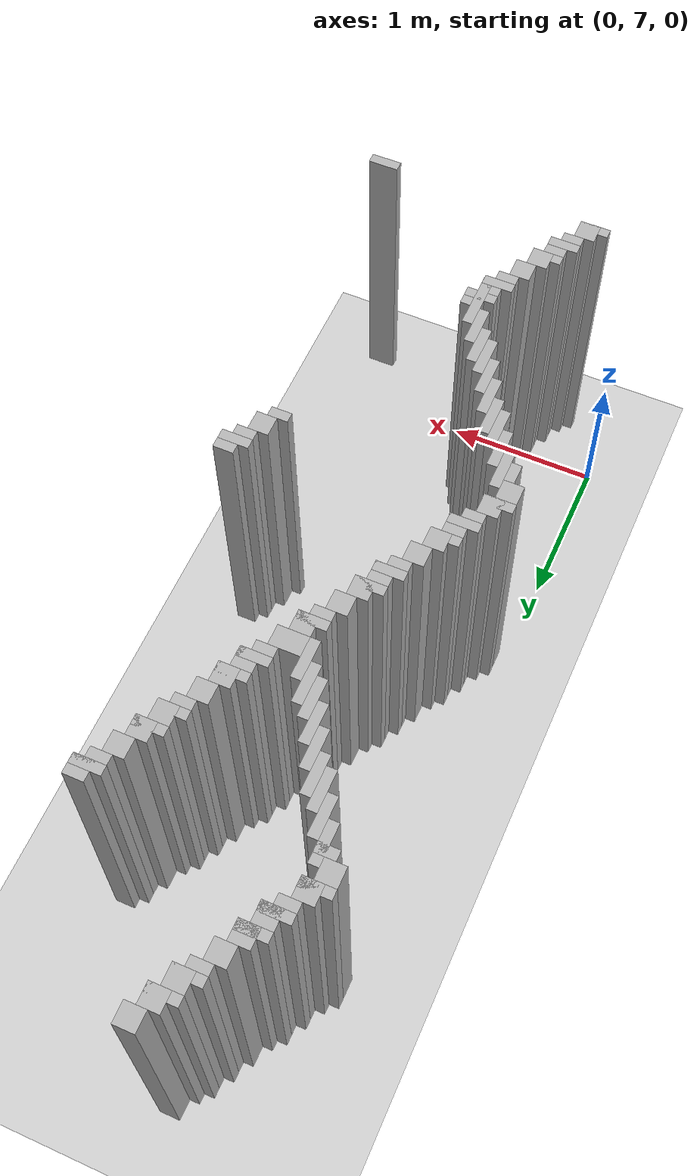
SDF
<sdf version="1.6">
 <world name="slam_world">
  <model name="ground_plane">
   <static>true</static>
   <link name="link">
    <collision name="collision">
     <geometry><plane><normal>0 0 1</normal><size>100 100</size></plane></geometry>
    </collision>
    <visual name="visual">
     <geometry><plane><normal>0 0 1</normal><size>100 100</size></plane></geometry>
     <material>
      <ambient>0.8 0.8 0.8 1</ambient>
      <diffuse>0.8 0.8 0.8 1</diffuse>
      <specular>0.8 0.8 0.8 1</specular>
     </material>
    </visual>
   </link>
  </model>
  <model name="wall_1159">
   <static>true</static>
   <pose>0.702127659574468 12.063829787234042 1.0 0 0 0</pose>
   <link name="link">
    <collision name="collision">
     <geometry><box><size>0.1276595744680851 0.1276595744680851 2.0</size></box></geometry>
    </collision>
    <visual name="visual">
     <geometry><box><size>0.1276595744680851 0.1276595744680851 2.0</size></box></geometry>
     <material><ambient>0.5 0.5 0.5 1</ambient><diffuse>0.7 0.7 0.7 1</diffuse></material>
    </visual>
   </link>
  </model>
  <model name="wall_1169">
   <static>true</static>
   <pose>0.6382978723404255 11.936170212765957 1.0 0 0 0</pose>
   <link name="link">
    <collision name="collision">
     <geometry><box><size>0.1276595744680851 0.1276595744680851 2.0</size></box></geometry>
    </collision>
    <visual name="visual">
     <geometry><box><size>0.1276595744680851 0.1276595744680851 2.0</size></box></geometry>
     <material><ambient>0.5 0.5 0.5 1</ambient><diffuse>0.7 0.7 0.7 1</diffuse></material>
    </visual>
   </link>
  </model>
  <model name="wall_1179">
   <static>true</static>
   <pose>0.6063829787234042 11.904255319148936 1.0 0 0 0</pose>
   <link name="link">
    <collision name="collision">
     <geometry><box><size>0.19148936170212766 0.06382978723404255 2.0</size></box></geometry>
    </collision>
    <visual name="visual">
     <geometry><box><size>0.19148936170212766 0.06382978723404255 2.0</size></box></geometry>
     <material><ambient>0.5 0.5 0.5 1</ambient><diffuse>0.7 0.7 0.7 1</diffuse></material>
    </visual>
   </link>
  </model>
  <model name="wall_1189">
   <static>true</static>
   <pose>0.5744680851063829 11.808510638297872 1.0 0 0 0</pose>
   <link name="link">
    <collision name="collision">
     <geometry><box><size>0.1276595744680851 0.1276595744680851 2.0</size></box></geometry>
    </collision>
    <visual name="visual">
     <geometry><box><size>0.1276595744680851 0.1276595744680851 2.0</size></box></geometry>
     <material><ambient>0.5 0.5 0.5 1</ambient><diffuse>0.7 0.7 0.7 1</diffuse></material>
    </visual>
   </link>
  </model>
  <model name="wall_1196">
   <static>true</static>
   <pose>0.5425531914893617 11.77659574468085 1.0 0 0 0</pose>
   <link name="link">
    <collision name="collision">
     <geometry><box><size>0.19148936170212766 0.06382978723404255 2.0</size></box></geometry>
    </collision>
    <visual name="visual">
     <geometry><box><size>0.19148936170212766 0.06382978723404255 2.0</size></box></geometry>
     <material><ambient>0.5 0.5 0.5 1</ambient><diffuse>0.7 0.7 0.7 1</diffuse></material>
    </visual>
   </link>
  </model>
  <model name="wall_1206">
   <static>true</static>
   <pose>0.5106382978723404 11.712765957446807 1.0 0 0 0</pose>
   <link name="link">
    <collision name="collision">
     <geometry><box><size>0.1276595744680851 0.06382978723404255 2.0</size></box></geometry>
    </collision>
    <visual name="visual">
     <geometry><box><size>0.1276595744680851 0.06382978723404255 2.0</size></box></geometry>
     <material><ambient>0.5 0.5 0.5 1</ambient><diffuse>0.7 0.7 0.7 1</diffuse></material>
    </visual>
   </link>
  </model>
  <model name="wall_1212">
   <static>true</static>
   <pose>0.44680851063829785 11.617021276595743 1.0 0 0 0</pose>
   <link name="link">
    <collision name="collision">
     <geometry><box><size>0.1276595744680851 0.1276595744680851 2.0</size></box></geometry>
    </collision>
    <visual name="visual">
     <geometry><box><size>0.1276595744680851 0.1276595744680851 2.0</size></box></geometry>
     <material><ambient>0.5 0.5 0.5 1</ambient><diffuse>0.7 0.7 0.7 1</diffuse></material>
    </visual>
   </link>
  </model>
  <model name="wall_1222">
   <static>true</static>
   <pose>0.3829787234042553 11.489361702127658 1.0 0 0 0</pose>
   <link name="link">
    <collision name="collision">
     <geometry><box><size>0.1276595744680851 0.1276595744680851 2.0</size></box></geometry>
    </collision>
    <visual name="visual">
     <geometry><box><size>0.1276595744680851 0.1276595744680851 2.0</size></box></geometry>
     <material><ambient>0.5 0.5 0.5 1</ambient><diffuse>0.7 0.7 0.7 1</diffuse></material>
    </visual>
   </link>
  </model>
  <model name="wall_1232">
   <static>true</static>
   <pose>0.351063829787234 11.457446808510637 1.0 0 0 0</pose>
   <link name="link">
    <collision name="collision">
     <geometry><box><size>0.19148936170212766 0.06382978723404255 2.0</size></box></geometry>
    </collision>
    <visual name="visual">
     <geometry><box><size>0.19148936170212766 0.06382978723404255 2.0</size></box></geometry>
     <material><ambient>0.5 0.5 0.5 1</ambient><diffuse>0.7 0.7 0.7 1</diffuse></material>
    </visual>
   </link>
  </model>
  <model name="wall_1242">
   <static>true</static>
   <pose>0.3191489361702127 11.361702127659573 1.0 0 0 0</pose>
   <link name="link">
    <collision name="collision">
     <geometry><box><size>0.1276595744680851 0.1276595744680851 2.0</size></box></geometry>
    </collision>
    <visual name="visual">
     <geometry><box><size>0.1276595744680851 0.1276595744680851 2.0</size></box></geometry>
     <material><ambient>0.5 0.5 0.5 1</ambient><diffuse>0.7 0.7 0.7 1</diffuse></material>
    </visual>
   </link>
  </model>
  <model name="wall_1248">
   <static>true</static>
   <pose>0.28723404255319146 11.329787234042552 1.0 0 0 0</pose>
   <link name="link">
    <collision name="collision">
     <geometry><box><size>0.19148936170212766 0.06382978723404255 2.0</size></box></geometry>
    </collision>
    <visual name="visual">
     <geometry><box><size>0.19148936170212766 0.06382978723404255 2.0</size></box></geometry>
     <material><ambient>0.5 0.5 0.5 1</ambient><diffuse>0.7 0.7 0.7 1</diffuse></material>
    </visual>
   </link>
  </model>
  <model name="wall_1258">
   <static>true</static>
   <pose>0.2553191489361702 11.26595744680851 1.0 0 0 0</pose>
   <link name="link">
    <collision name="collision">
     <geometry><box><size>0.1276595744680851 0.06382978723404255 2.0</size></box></geometry>
    </collision>
    <visual name="visual">
     <geometry><box><size>0.1276595744680851 0.06382978723404255 2.0</size></box></geometry>
     <material><ambient>0.5 0.5 0.5 1</ambient><diffuse>0.7 0.7 0.7 1</diffuse></material>
    </visual>
   </link>
  </model>
  <model name="wall_1264">
   <static>true</static>
   <pose>0.19148936170212766 11.170212765957446 1.0 0 0 0</pose>
   <link name="link">
    <collision name="collision">
     <geometry><box><size>0.1276595744680851 0.1276595744680851 2.0</size></box></geometry>
    </collision>
    <visual name="visual">
     <geometry><box><size>0.1276595744680851 0.1276595744680851 2.0</size></box></geometry>
     <material><ambient>0.5 0.5 0.5 1</ambient><diffuse>0.7 0.7 0.7 1</diffuse></material>
    </visual>
   </link>
  </model>
  <model name="wall_1271">
   <static>true</static>
   <pose>0.15957446808510636 11.138297872340425 1.0 0 0 0</pose>
   <link name="link">
    <collision name="collision">
     <geometry><box><size>0.19148936170212766 0.06382978723404255 2.0</size></box></geometry>
    </collision>
    <visual name="visual">
     <geometry><box><size>0.19148936170212766 0.06382978723404255 2.0</size></box></geometry>
     <material><ambient>0.5 0.5 0.5 1</ambient><diffuse>0.7 0.7 0.7 1</diffuse></material>
    </visual>
   </link>
  </model>
  <model name="wall_1277">
   <static>true</static>
   <pose>0.1276595744680851 11.042553191489361 1.0 0 0 0</pose>
   <link name="link">
    <collision name="collision">
     <geometry><box><size>0.1276595744680851 0.1276595744680851 2.0</size></box></geometry>
    </collision>
    <visual name="visual">
     <geometry><box><size>0.1276595744680851 0.1276595744680851 2.0</size></box></geometry>
     <material><ambient>0.5 0.5 0.5 1</ambient><diffuse>0.7 0.7 0.7 1</diffuse></material>
    </visual>
   </link>
  </model>
  <model name="wall_1278">
   <static>true</static>
   <pose>1.5319148936170213 11.042553191489361 1.0 0 0 0</pose>
   <link name="link">
    <collision name="collision">
     <geometry><box><size>0.1276595744680851 0.1276595744680851 2.0</size></box></geometry>
    </collision>
    <visual name="visual">
     <geometry><box><size>0.1276595744680851 0.1276595744680851 2.0</size></box></geometry>
     <material><ambient>0.5 0.5 0.5 1</ambient><diffuse>0.7 0.7 0.7 1</diffuse></material>
    </visual>
   </link>
  </model>
  <model name="wall_1283">
   <static>true</static>
   <pose>0.22340425531914893 10.914893617021276 1.0 0 0 0</pose>
   <link name="link">
    <collision name="collision">
     <geometry><box><size>0.06382978723404255 0.2553191489361702 2.0</size></box></geometry>
    </collision>
    <visual name="visual">
     <geometry><box><size>0.06382978723404255 0.2553191489361702 2.0</size></box></geometry>
     <material><ambient>0.5 0.5 0.5 1</ambient><diffuse>0.7 0.7 0.7 1</diffuse></material>
    </visual>
   </link>
  </model>
  <model name="wall_1284">
   <static>true</static>
   <pose>1.4999999999999998 11.01063829787234 1.0 0 0 0</pose>
   <link name="link">
    <collision name="collision">
     <geometry><box><size>0.19148936170212766 0.06382978723404255 2.0</size></box></geometry>
    </collision>
    <visual name="visual">
     <geometry><box><size>0.19148936170212766 0.06382978723404255 2.0</size></box></geometry>
     <material><ambient>0.5 0.5 0.5 1</ambient><diffuse>0.7 0.7 0.7 1</diffuse></material>
    </visual>
   </link>
  </model>
  <model name="wall_1289">
   <static>true</static>
   <pose>0.19148936170212766 10.946808510638297 1.0 0 0 0</pose>
   <link name="link">
    <collision name="collision">
     <geometry><box><size>0.1276595744680851 0.06382978723404255 2.0</size></box></geometry>
    </collision>
    <visual name="visual">
     <geometry><box><size>0.1276595744680851 0.06382978723404255 2.0</size></box></geometry>
     <material><ambient>0.5 0.5 0.5 1</ambient><diffuse>0.7 0.7 0.7 1</diffuse></material>
    </visual>
   </link>
  </model>
  <model name="wall_1290">
   <static>true</static>
   <pose>1.4680851063829785 10.946808510638297 1.0 0 0 0</pose>
   <link name="link">
    <collision name="collision">
     <geometry><box><size>0.1276595744680851 0.06382978723404255 2.0</size></box></geometry>
    </collision>
    <visual name="visual">
     <geometry><box><size>0.1276595744680851 0.06382978723404255 2.0</size></box></geometry>
     <material><ambient>0.5 0.5 0.5 1</ambient><diffuse>0.7 0.7 0.7 1</diffuse></material>
    </visual>
   </link>
  </model>
  <model name="wall_1296">
   <static>true</static>
   <pose>0.28723404255319146 10.787234042553191 1.0 0 0 0</pose>
   <link name="link">
    <collision name="collision">
     <geometry><box><size>0.06382978723404255 0.2553191489361702 2.0</size></box></geometry>
    </collision>
    <visual name="visual">
     <geometry><box><size>0.06382978723404255 0.2553191489361702 2.0</size></box></geometry>
     <material><ambient>0.5 0.5 0.5 1</ambient><diffuse>0.7 0.7 0.7 1</diffuse></material>
    </visual>
   </link>
  </model>
  <model name="wall_1297">
   <static>true</static>
   <pose>1.404255319148936 10.851063829787233 1.0 0 0 0</pose>
   <link name="link">
    <collision name="collision">
     <geometry><box><size>0.1276595744680851 0.1276595744680851 2.0</size></box></geometry>
    </collision>
    <visual name="visual">
     <geometry><box><size>0.1276595744680851 0.1276595744680851 2.0</size></box></geometry>
     <material><ambient>0.5 0.5 0.5 1</ambient><diffuse>0.7 0.7 0.7 1</diffuse></material>
    </visual>
   </link>
  </model>
  <model name="wall_1303">
   <static>true</static>
   <pose>0.351063829787234 10.659574468085106 1.0 0 0 0</pose>
   <link name="link">
    <collision name="collision">
     <geometry><box><size>0.06382978723404255 0.2553191489361702 2.0</size></box></geometry>
    </collision>
    <visual name="visual">
     <geometry><box><size>0.06382978723404255 0.2553191489361702 2.0</size></box></geometry>
     <material><ambient>0.5 0.5 0.5 1</ambient><diffuse>0.7 0.7 0.7 1</diffuse></material>
    </visual>
   </link>
  </model>
  <model name="wall_1304">
   <static>true</static>
   <pose>1.3404255319148934 10.723404255319148 1.0 0 0 0</pose>
   <link name="link">
    <collision name="collision">
     <geometry><box><size>0.1276595744680851 0.1276595744680851 2.0</size></box></geometry>
    </collision>
    <visual name="visual">
     <geometry><box><size>0.1276595744680851 0.1276595744680851 2.0</size></box></geometry>
     <material><ambient>0.5 0.5 0.5 1</ambient><diffuse>0.7 0.7 0.7 1</diffuse></material>
    </visual>
   </link>
  </model>
  <model name="wall_1310">
   <static>true</static>
   <pose>0.4148936170212766 10.595744680851062 1.0 0 0 0</pose>
   <link name="link">
    <collision name="collision">
     <geometry><box><size>0.06382978723404255 0.2553191489361702 2.0</size></box></geometry>
    </collision>
    <visual name="visual">
     <geometry><box><size>0.06382978723404255 0.2553191489361702 2.0</size></box></geometry>
     <material><ambient>0.5 0.5 0.5 1</ambient><diffuse>0.7 0.7 0.7 1</diffuse></material>
    </visual>
   </link>
  </model>
  <model name="wall_1311">
   <static>true</static>
   <pose>1.3085106382978722 10.691489361702127 1.0 0 0 0</pose>
   <link name="link">
    <collision name="collision">
     <geometry><box><size>0.19148936170212766 0.06382978723404255 2.0</size></box></geometry>
    </collision>
    <visual name="visual">
     <geometry><box><size>0.19148936170212766 0.06382978723404255 2.0</size></box></geometry>
     <material><ambient>0.5 0.5 0.5 1</ambient><diffuse>0.7 0.7 0.7 1</diffuse></material>
    </visual>
   </link>
  </model>
  <model name="wall_1317">
   <static>true</static>
   <pose>1.276595744680851 10.595744680851062 1.0 0 0 0</pose>
   <link name="link">
    <collision name="collision">
     <geometry><box><size>0.1276595744680851 0.1276595744680851 2.0</size></box></geometry>
    </collision>
    <visual name="visual">
     <geometry><box><size>0.1276595744680851 0.1276595744680851 2.0</size></box></geometry>
     <material><ambient>0.5 0.5 0.5 1</ambient><diffuse>0.7 0.7 0.7 1</diffuse></material>
    </visual>
   </link>
  </model>
  <model name="wall_1319">
   <static>true</static>
   <pose>0.4787234042553191 10.468085106382977 1.0 0 0 0</pose>
   <link name="link">
    <collision name="collision">
     <geometry><box><size>0.06382978723404255 0.2553191489361702 2.0</size></box></geometry>
    </collision>
    <visual name="visual">
     <geometry><box><size>0.06382978723404255 0.2553191489361702 2.0</size></box></geometry>
     <material><ambient>0.5 0.5 0.5 1</ambient><diffuse>0.7 0.7 0.7 1</diffuse></material>
    </visual>
   </link>
  </model>
  <model name="wall_1320">
   <static>true</static>
   <pose>1.2446808510638296 10.563829787234042 1.0 0 0 0</pose>
   <link name="link">
    <collision name="collision">
     <geometry><box><size>0.19148936170212766 0.06382978723404255 2.0</size></box></geometry>
    </collision>
    <visual name="visual">
     <geometry><box><size>0.19148936170212766 0.06382978723404255 2.0</size></box></geometry>
     <material><ambient>0.5 0.5 0.5 1</ambient><diffuse>0.7 0.7 0.7 1</diffuse></material>
    </visual>
   </link>
  </model>
  <model name="wall_1326">
   <static>true</static>
   <pose>1.2127659574468084 10.5 1.0 0 0 0</pose>
   <link name="link">
    <collision name="collision">
     <geometry><box><size>0.1276595744680851 0.06382978723404255 2.0</size></box></geometry>
    </collision>
    <visual name="visual">
     <geometry><box><size>0.1276595744680851 0.06382978723404255 2.0</size></box></geometry>
     <material><ambient>0.5 0.5 0.5 1</ambient><diffuse>0.7 0.7 0.7 1</diffuse></material>
    </visual>
   </link>
  </model>
  <model name="wall_1328">
   <static>true</static>
   <pose>0.5425531914893617 10.340425531914892 1.0 0 0 0</pose>
   <link name="link">
    <collision name="collision">
     <geometry><box><size>0.06382978723404255 0.2553191489361702 2.0</size></box></geometry>
    </collision>
    <visual name="visual">
     <geometry><box><size>0.06382978723404255 0.2553191489361702 2.0</size></box></geometry>
     <material><ambient>0.5 0.5 0.5 1</ambient><diffuse>0.7 0.7 0.7 1</diffuse></material>
    </visual>
   </link>
  </model>
  <model name="wall_1329">
   <static>true</static>
   <pose>1.1489361702127658 10.404255319148936 1.0 0 0 0</pose>
   <link name="link">
    <collision name="collision">
     <geometry><box><size>0.1276595744680851 0.1276595744680851 2.0</size></box></geometry>
    </collision>
    <visual name="visual">
     <geometry><box><size>0.1276595744680851 0.1276595744680851 2.0</size></box></geometry>
     <material><ambient>0.5 0.5 0.5 1</ambient><diffuse>0.7 0.7 0.7 1</diffuse></material>
    </visual>
   </link>
  </model>
  <model name="wall_1335">
   <static>true</static>
   <pose>0.6063829787234042 10.212765957446807 1.0 0 0 0</pose>
   <link name="link">
    <collision name="collision">
     <geometry><box><size>0.06382978723404255 0.2553191489361702 2.0</size></box></geometry>
    </collision>
    <visual name="visual">
     <geometry><box><size>0.06382978723404255 0.2553191489361702 2.0</size></box></geometry>
     <material><ambient>0.5 0.5 0.5 1</ambient><diffuse>0.7 0.7 0.7 1</diffuse></material>
    </visual>
   </link>
  </model>
  <model name="wall_1336">
   <static>true</static>
   <pose>1.0851063829787233 10.27659574468085 1.0 0 0 0</pose>
   <link name="link">
    <collision name="collision">
     <geometry><box><size>0.1276595744680851 0.1276595744680851 2.0</size></box></geometry>
    </collision>
    <visual name="visual">
     <geometry><box><size>0.1276595744680851 0.1276595744680851 2.0</size></box></geometry>
     <material><ambient>0.5 0.5 0.5 1</ambient><diffuse>0.7 0.7 0.7 1</diffuse></material>
    </visual>
   </link>
  </model>
  <model name="wall_1342">
   <static>true</static>
   <pose>0.6702127659574467 10.148936170212766 1.0 0 0 0</pose>
   <link name="link">
    <collision name="collision">
     <geometry><box><size>0.06382978723404255 0.2553191489361702 2.0</size></box></geometry>
    </collision>
    <visual name="visual">
     <geometry><box><size>0.06382978723404255 0.2553191489361702 2.0</size></box></geometry>
     <material><ambient>0.5 0.5 0.5 1</ambient><diffuse>0.7 0.7 0.7 1</diffuse></material>
    </visual>
   </link>
  </model>
  <model name="wall_1343">
   <static>true</static>
   <pose>1.053191489361702 10.24468085106383 1.0 0 0 0</pose>
   <link name="link">
    <collision name="collision">
     <geometry><box><size>0.19148936170212766 0.06382978723404255 2.0</size></box></geometry>
    </collision>
    <visual name="visual">
     <geometry><box><size>0.19148936170212766 0.06382978723404255 2.0</size></box></geometry>
     <material><ambient>0.5 0.5 0.5 1</ambient><diffuse>0.7 0.7 0.7 1</diffuse></material>
    </visual>
   </link>
  </model>
  <model name="wall_1349">
   <static>true</static>
   <pose>1.0212765957446808 10.148936170212766 1.0 0 0 0</pose>
   <link name="link">
    <collision name="collision">
     <geometry><box><size>0.1276595744680851 0.1276595744680851 2.0</size></box></geometry>
    </collision>
    <visual name="visual">
     <geometry><box><size>0.1276595744680851 0.1276595744680851 2.0</size></box></geometry>
     <material><ambient>0.5 0.5 0.5 1</ambient><diffuse>0.7 0.7 0.7 1</diffuse></material>
    </visual>
   </link>
  </model>
  <model name="wall_1351">
   <static>true</static>
   <pose>0.7340425531914893 10.02127659574468 1.0 0 0 0</pose>
   <link name="link">
    <collision name="collision">
     <geometry><box><size>0.06382978723404255 0.2553191489361702 2.0</size></box></geometry>
    </collision>
    <visual name="visual">
     <geometry><box><size>0.06382978723404255 0.2553191489361702 2.0</size></box></geometry>
     <material><ambient>0.5 0.5 0.5 1</ambient><diffuse>0.7 0.7 0.7 1</diffuse></material>
    </visual>
   </link>
  </model>
  <model name="wall_1352">
   <static>true</static>
   <pose>0.9893617021276595 10.117021276595743 1.0 0 0 0</pose>
   <link name="link">
    <collision name="collision">
     <geometry><box><size>0.19148936170212766 0.06382978723404255 2.0</size></box></geometry>
    </collision>
    <visual name="visual">
     <geometry><box><size>0.19148936170212766 0.06382978723404255 2.0</size></box></geometry>
     <material><ambient>0.5 0.5 0.5 1</ambient><diffuse>0.7 0.7 0.7 1</diffuse></material>
    </visual>
   </link>
  </model>
  <model name="wall_1358">
   <static>true</static>
   <pose>0.9574468085106382 10.053191489361701 1.0 0 0 0</pose>
   <link name="link">
    <collision name="collision">
     <geometry><box><size>0.1276595744680851 0.06382978723404255 2.0</size></box></geometry>
    </collision>
    <visual name="visual">
     <geometry><box><size>0.1276595744680851 0.06382978723404255 2.0</size></box></geometry>
     <material><ambient>0.5 0.5 0.5 1</ambient><diffuse>0.7 0.7 0.7 1</diffuse></material>
    </visual>
   </link>
  </model>
  <model name="wall_1360">
   <static>true</static>
   <pose>0.8617021276595744 9.957446808510637 1.0 0 0 0</pose>
   <link name="link">
    <collision name="collision">
     <geometry><box><size>0.19148936170212766 0.1276595744680851 2.0</size></box></geometry>
    </collision>
    <visual name="visual">
     <geometry><box><size>0.19148936170212766 0.1276595744680851 2.0</size></box></geometry>
     <material><ambient>0.5 0.5 0.5 1</ambient><diffuse>0.7 0.7 0.7 1</diffuse></material>
    </visual>
   </link>
  </model>
  <model name="wall_1373">
   <static>true</static>
   <pose>0.8297872340425532 9.829787234042552 1.0 0 0 0</pose>
   <link name="link">
    <collision name="collision">
     <geometry><box><size>0.1276595744680851 0.1276595744680851 2.0</size></box></geometry>
    </collision>
    <visual name="visual">
     <geometry><box><size>0.1276595744680851 0.1276595744680851 2.0</size></box></geometry>
     <material><ambient>0.5 0.5 0.5 1</ambient><diffuse>0.7 0.7 0.7 1</diffuse></material>
    </visual>
   </link>
  </model>
  <model name="wall_1378">
   <static>true</static>
   <pose>0.7978723404255319 9.797872340425531 1.0 0 0 0</pose>
   <link name="link">
    <collision name="collision">
     <geometry><box><size>0.19148936170212766 0.06382978723404255 2.0</size></box></geometry>
    </collision>
    <visual name="visual">
     <geometry><box><size>0.19148936170212766 0.06382978723404255 2.0</size></box></geometry>
     <material><ambient>0.5 0.5 0.5 1</ambient><diffuse>0.7 0.7 0.7 1</diffuse></material>
    </visual>
   </link>
  </model>
  <model name="wall_1383">
   <static>true</static>
   <pose>0.7659574468085106 9.734042553191488 1.0 0 0 0</pose>
   <link name="link">
    <collision name="collision">
     <geometry><box><size>0.1276595744680851 0.06382978723404255 2.0</size></box></geometry>
    </collision>
    <visual name="visual">
     <geometry><box><size>0.1276595744680851 0.06382978723404255 2.0</size></box></geometry>
     <material><ambient>0.5 0.5 0.5 1</ambient><diffuse>0.7 0.7 0.7 1</diffuse></material>
    </visual>
   </link>
  </model>
  <model name="wall_1389">
   <static>true</static>
   <pose>0.702127659574468 9.638297872340425 1.0 0 0 0</pose>
   <link name="link">
    <collision name="collision">
     <geometry><box><size>0.1276595744680851 0.1276595744680851 2.0</size></box></geometry>
    </collision>
    <visual name="visual">
     <geometry><box><size>0.1276595744680851 0.1276595744680851 2.0</size></box></geometry>
     <material><ambient>0.5 0.5 0.5 1</ambient><diffuse>0.7 0.7 0.7 1</diffuse></material>
    </visual>
   </link>
  </model>
  <model name="wall_1397">
   <static>true</static>
   <pose>0.6382978723404255 9.51063829787234 1.0 0 0 0</pose>
   <link name="link">
    <collision name="collision">
     <geometry><box><size>0.1276595744680851 0.1276595744680851 2.0</size></box></geometry>
    </collision>
    <visual name="visual">
     <geometry><box><size>0.1276595744680851 0.1276595744680851 2.0</size></box></geometry>
     <material><ambient>0.5 0.5 0.5 1</ambient><diffuse>0.7 0.7 0.7 1</diffuse></material>
    </visual>
   </link>
  </model>
  <model name="wall_1405">
   <static>true</static>
   <pose>0.6063829787234042 9.478723404255318 1.0 0 0 0</pose>
   <link name="link">
    <collision name="collision">
     <geometry><box><size>0.19148936170212766 0.06382978723404255 2.0</size></box></geometry>
    </collision>
    <visual name="visual">
     <geometry><box><size>0.19148936170212766 0.06382978723404255 2.0</size></box></geometry>
     <material><ambient>0.5 0.5 0.5 1</ambient><diffuse>0.7 0.7 0.7 1</diffuse></material>
    </visual>
   </link>
  </model>
  <model name="wall_1413">
   <static>true</static>
   <pose>0.5744680851063829 9.382978723404255 1.0 0 0 0</pose>
   <link name="link">
    <collision name="collision">
     <geometry><box><size>0.1276595744680851 0.1276595744680851 2.0</size></box></geometry>
    </collision>
    <visual name="visual">
     <geometry><box><size>0.1276595744680851 0.1276595744680851 2.0</size></box></geometry>
     <material><ambient>0.5 0.5 0.5 1</ambient><diffuse>0.7 0.7 0.7 1</diffuse></material>
    </visual>
   </link>
  </model>
  <model name="wall_1419">
   <static>true</static>
   <pose>0.5425531914893617 9.351063829787233 1.0 0 0 0</pose>
   <link name="link">
    <collision name="collision">
     <geometry><box><size>0.19148936170212766 0.06382978723404255 2.0</size></box></geometry>
    </collision>
    <visual name="visual">
     <geometry><box><size>0.19148936170212766 0.06382978723404255 2.0</size></box></geometry>
     <material><ambient>0.5 0.5 0.5 1</ambient><diffuse>0.7 0.7 0.7 1</diffuse></material>
    </visual>
   </link>
  </model>
  <model name="wall_1427">
   <static>true</static>
   <pose>0.5106382978723404 9.287234042553191 1.0 0 0 0</pose>
   <link name="link">
    <collision name="collision">
     <geometry><box><size>0.1276595744680851 0.06382978723404255 2.0</size></box></geometry>
    </collision>
    <visual name="visual">
     <geometry><box><size>0.1276595744680851 0.06382978723404255 2.0</size></box></geometry>
     <material><ambient>0.5 0.5 0.5 1</ambient><diffuse>0.7 0.7 0.7 1</diffuse></material>
    </visual>
   </link>
  </model>
  <model name="wall_1432">
   <static>true</static>
   <pose>0.44680851063829785 9.191489361702127 1.0 0 0 0</pose>
   <link name="link">
    <collision name="collision">
     <geometry><box><size>0.1276595744680851 0.1276595744680851 2.0</size></box></geometry>
    </collision>
    <visual name="visual">
     <geometry><box><size>0.1276595744680851 0.1276595744680851 2.0</size></box></geometry>
     <material><ambient>0.5 0.5 0.5 1</ambient><diffuse>0.7 0.7 0.7 1</diffuse></material>
    </visual>
   </link>
  </model>
  <model name="wall_1440">
   <static>true</static>
   <pose>0.3829787234042553 9.063829787234042 1.0 0 0 0</pose>
   <link name="link">
    <collision name="collision">
     <geometry><box><size>0.1276595744680851 0.1276595744680851 2.0</size></box></geometry>
    </collision>
    <visual name="visual">
     <geometry><box><size>0.1276595744680851 0.1276595744680851 2.0</size></box></geometry>
     <material><ambient>0.5 0.5 0.5 1</ambient><diffuse>0.7 0.7 0.7 1</diffuse></material>
    </visual>
   </link>
  </model>
  <model name="wall_1448">
   <static>true</static>
   <pose>0.351063829787234 9.03191489361702 1.0 0 0 0</pose>
   <link name="link">
    <collision name="collision">
     <geometry><box><size>0.19148936170212766 0.06382978723404255 2.0</size></box></geometry>
    </collision>
    <visual name="visual">
     <geometry><box><size>0.19148936170212766 0.06382978723404255 2.0</size></box></geometry>
     <material><ambient>0.5 0.5 0.5 1</ambient><diffuse>0.7 0.7 0.7 1</diffuse></material>
    </visual>
   </link>
  </model>
  <model name="wall_1456">
   <static>true</static>
   <pose>0.3191489361702127 8.936170212765957 1.0 0 0 0</pose>
   <link name="link">
    <collision name="collision">
     <geometry><box><size>0.1276595744680851 0.1276595744680851 2.0</size></box></geometry>
    </collision>
    <visual name="visual">
     <geometry><box><size>0.1276595744680851 0.1276595744680851 2.0</size></box></geometry>
     <material><ambient>0.5 0.5 0.5 1</ambient><diffuse>0.7 0.7 0.7 1</diffuse></material>
    </visual>
   </link>
  </model>
  <model name="wall_1457">
   <static>true</static>
   <pose>1.7234042553191489 8.936170212765957 1.0 0 0 0</pose>
   <link name="link">
    <collision name="collision">
     <geometry><box><size>0.1276595744680851 0.1276595744680851 2.0</size></box></geometry>
    </collision>
    <visual name="visual">
     <geometry><box><size>0.1276595744680851 0.1276595744680851 2.0</size></box></geometry>
     <material><ambient>0.5 0.5 0.5 1</ambient><diffuse>0.7 0.7 0.7 1</diffuse></material>
    </visual>
   </link>
  </model>
  <model name="wall_1461">
   <static>true</static>
   <pose>0.28723404255319146 8.904255319148936 1.0 0 0 0</pose>
   <link name="link">
    <collision name="collision">
     <geometry><box><size>0.19148936170212766 0.06382978723404255 2.0</size></box></geometry>
    </collision>
    <visual name="visual">
     <geometry><box><size>0.19148936170212766 0.06382978723404255 2.0</size></box></geometry>
     <material><ambient>0.5 0.5 0.5 1</ambient><diffuse>0.7 0.7 0.7 1</diffuse></material>
    </visual>
   </link>
  </model>
  <model name="wall_1462">
   <static>true</static>
   <pose>1.6914893617021276 8.904255319148936 1.0 0 0 0</pose>
   <link name="link">
    <collision name="collision">
     <geometry><box><size>0.19148936170212766 0.06382978723404255 2.0</size></box></geometry>
    </collision>
    <visual name="visual">
     <geometry><box><size>0.19148936170212766 0.06382978723404255 2.0</size></box></geometry>
     <material><ambient>0.5 0.5 0.5 1</ambient><diffuse>0.7 0.7 0.7 1</diffuse></material>
    </visual>
   </link>
  </model>
  <model name="wall_1469">
   <static>true</static>
   <pose>0.2553191489361702 8.840425531914892 1.0 0 0 0</pose>
   <link name="link">
    <collision name="collision">
     <geometry><box><size>0.1276595744680851 0.06382978723404255 2.0</size></box></geometry>
    </collision>
    <visual name="visual">
     <geometry><box><size>0.1276595744680851 0.06382978723404255 2.0</size></box></geometry>
     <material><ambient>0.5 0.5 0.5 1</ambient><diffuse>0.7 0.7 0.7 1</diffuse></material>
    </visual>
   </link>
  </model>
  <model name="wall_1470">
   <static>true</static>
   <pose>1.6595744680851063 8.840425531914892 1.0 0 0 0</pose>
   <link name="link">
    <collision name="collision">
     <geometry><box><size>0.1276595744680851 0.06382978723404255 2.0</size></box></geometry>
    </collision>
    <visual name="visual">
     <geometry><box><size>0.1276595744680851 0.06382978723404255 2.0</size></box></geometry>
     <material><ambient>0.5 0.5 0.5 1</ambient><diffuse>0.7 0.7 0.7 1</diffuse></material>
    </visual>
   </link>
  </model>
  <model name="wall_1474">
   <static>true</static>
   <pose>0.19148936170212766 8.74468085106383 1.0 0 0 0</pose>
   <link name="link">
    <collision name="collision">
     <geometry><box><size>0.1276595744680851 0.1276595744680851 2.0</size></box></geometry>
    </collision>
    <visual name="visual">
     <geometry><box><size>0.1276595744680851 0.1276595744680851 2.0</size></box></geometry>
     <material><ambient>0.5 0.5 0.5 1</ambient><diffuse>0.7 0.7 0.7 1</diffuse></material>
    </visual>
   </link>
  </model>
  <model name="wall_1475">
   <static>true</static>
   <pose>1.5957446808510638 8.74468085106383 1.0 0 0 0</pose>
   <link name="link">
    <collision name="collision">
     <geometry><box><size>0.1276595744680851 0.1276595744680851 2.0</size></box></geometry>
    </collision>
    <visual name="visual">
     <geometry><box><size>0.1276595744680851 0.1276595744680851 2.0</size></box></geometry>
     <material><ambient>0.5 0.5 0.5 1</ambient><diffuse>0.7 0.7 0.7 1</diffuse></material>
    </visual>
   </link>
  </model>
  <model name="wall_1482">
   <static>true</static>
   <pose>0.15957446808510636 8.712765957446807 1.0 0 0 0</pose>
   <link name="link">
    <collision name="collision">
     <geometry><box><size>0.19148936170212766 0.06382978723404255 2.0</size></box></geometry>
    </collision>
    <visual name="visual">
     <geometry><box><size>0.19148936170212766 0.06382978723404255 2.0</size></box></geometry>
     <material><ambient>0.5 0.5 0.5 1</ambient><diffuse>0.7 0.7 0.7 1</diffuse></material>
    </visual>
   </link>
  </model>
  <model name="wall_1487">
   <static>true</static>
   <pose>0.1276595744680851 8.617021276595745 1.0 0 0 0</pose>
   <link name="link">
    <collision name="collision">
     <geometry><box><size>0.1276595744680851 0.1276595744680851 2.0</size></box></geometry>
    </collision>
    <visual name="visual">
     <geometry><box><size>0.1276595744680851 0.1276595744680851 2.0</size></box></geometry>
     <material><ambient>0.5 0.5 0.5 1</ambient><diffuse>0.7 0.7 0.7 1</diffuse></material>
    </visual>
   </link>
  </model>
  <model name="wall_1488">
   <static>true</static>
   <pose>1.5319148936170213 8.648936170212766 1.0 0 0 0</pose>
   <link name="link">
    <collision name="collision">
     <geometry><box><size>0.1276595744680851 0.06382978723404255 2.0</size></box></geometry>
    </collision>
    <visual name="visual">
     <geometry><box><size>0.1276595744680851 0.06382978723404255 2.0</size></box></geometry>
     <material><ambient>0.5 0.5 0.5 1</ambient><diffuse>0.7 0.7 0.7 1</diffuse></material>
    </visual>
   </link>
  </model>
  <model name="wall_1494">
   <static>true</static>
   <pose>0.22340425531914893 8.48936170212766 1.0 0 0 0</pose>
   <link name="link">
    <collision name="collision">
     <geometry><box><size>0.06382978723404255 0.2553191489361702 2.0</size></box></geometry>
    </collision>
    <visual name="visual">
     <geometry><box><size>0.06382978723404255 0.2553191489361702 2.0</size></box></geometry>
     <material><ambient>0.5 0.5 0.5 1</ambient><diffuse>0.7 0.7 0.7 1</diffuse></material>
    </visual>
   </link>
  </model>
  <model name="wall_1498">
   <static>true</static>
   <pose>0.19148936170212766 8.48936170212766 1.0 0 0 0</pose>
   <link name="link">
    <collision name="collision">
     <geometry><box><size>0.1276595744680851 0.1276595744680851 2.0</size></box></geometry>
    </collision>
    <visual name="visual">
     <geometry><box><size>0.1276595744680851 0.1276595744680851 2.0</size></box></geometry>
     <material><ambient>0.5 0.5 0.5 1</ambient><diffuse>0.7 0.7 0.7 1</diffuse></material>
    </visual>
   </link>
  </model>
  <model name="wall_1502">
   <static>true</static>
   <pose>0.28723404255319146 8.361702127659575 1.0 0 0 0</pose>
   <link name="link">
    <collision name="collision">
     <geometry><box><size>0.06382978723404255 0.2553191489361702 2.0</size></box></geometry>
    </collision>
    <visual name="visual">
     <geometry><box><size>0.06382978723404255 0.2553191489361702 2.0</size></box></geometry>
     <material><ambient>0.5 0.5 0.5 1</ambient><diffuse>0.7 0.7 0.7 1</diffuse></material>
    </visual>
   </link>
  </model>
  <model name="wall_1509">
   <static>true</static>
   <pose>0.351063829787234 8.23404255319149 1.0 0 0 0</pose>
   <link name="link">
    <collision name="collision">
     <geometry><box><size>0.06382978723404255 0.2553191489361702 2.0</size></box></geometry>
    </collision>
    <visual name="visual">
     <geometry><box><size>0.06382978723404255 0.2553191489361702 2.0</size></box></geometry>
     <material><ambient>0.5 0.5 0.5 1</ambient><diffuse>0.7 0.7 0.7 1</diffuse></material>
    </visual>
   </link>
  </model>
  <model name="wall_1514">
   <static>true</static>
   <pose>0.4148936170212766 8.170212765957446 1.0 0 0 0</pose>
   <link name="link">
    <collision name="collision">
     <geometry><box><size>0.06382978723404255 0.2553191489361702 2.0</size></box></geometry>
    </collision>
    <visual name="visual">
     <geometry><box><size>0.06382978723404255 0.2553191489361702 2.0</size></box></geometry>
     <material><ambient>0.5 0.5 0.5 1</ambient><diffuse>0.7 0.7 0.7 1</diffuse></material>
    </visual>
   </link>
  </model>
  <model name="wall_1521">
   <static>true</static>
   <pose>0.4787234042553191 8.042553191489361 1.0 0 0 0</pose>
   <link name="link">
    <collision name="collision">
     <geometry><box><size>0.06382978723404255 0.2553191489361702 2.0</size></box></geometry>
    </collision>
    <visual name="visual">
     <geometry><box><size>0.06382978723404255 0.2553191489361702 2.0</size></box></geometry>
     <material><ambient>0.5 0.5 0.5 1</ambient><diffuse>0.7 0.7 0.7 1</diffuse></material>
    </visual>
   </link>
  </model>
  <model name="wall_1527">
   <static>true</static>
   <pose>0.5425531914893617 7.914893617021276 1.0 0 0 0</pose>
   <link name="link">
    <collision name="collision">
     <geometry><box><size>0.06382978723404255 0.2553191489361702 2.0</size></box></geometry>
    </collision>
    <visual name="visual">
     <geometry><box><size>0.06382978723404255 0.2553191489361702 2.0</size></box></geometry>
     <material><ambient>0.5 0.5 0.5 1</ambient><diffuse>0.7 0.7 0.7 1</diffuse></material>
    </visual>
   </link>
  </model>
  <model name="wall_1532">
   <static>true</static>
   <pose>0.6063829787234042 7.787234042553191 1.0 0 0 0</pose>
   <link name="link">
    <collision name="collision">
     <geometry><box><size>0.06382978723404255 0.2553191489361702 2.0</size></box></geometry>
    </collision>
    <visual name="visual">
     <geometry><box><size>0.06382978723404255 0.2553191489361702 2.0</size></box></geometry>
     <material><ambient>0.5 0.5 0.5 1</ambient><diffuse>0.7 0.7 0.7 1</diffuse></material>
    </visual>
   </link>
  </model>
  <model name="wall_1537">
   <static>true</static>
   <pose>0.6702127659574467 7.723404255319148 1.0 0 0 0</pose>
   <link name="link">
    <collision name="collision">
     <geometry><box><size>0.06382978723404255 0.2553191489361702 2.0</size></box></geometry>
    </collision>
    <visual name="visual">
     <geometry><box><size>0.06382978723404255 0.2553191489361702 2.0</size></box></geometry>
     <material><ambient>0.5 0.5 0.5 1</ambient><diffuse>0.7 0.7 0.7 1</diffuse></material>
    </visual>
   </link>
  </model>
  <model name="wall_1543">
   <static>true</static>
   <pose>0.7340425531914893 7.595744680851063 1.0 0 0 0</pose>
   <link name="link">
    <collision name="collision">
     <geometry><box><size>0.06382978723404255 0.2553191489361702 2.0</size></box></geometry>
    </collision>
    <visual name="visual">
     <geometry><box><size>0.06382978723404255 0.2553191489361702 2.0</size></box></geometry>
     <material><ambient>0.5 0.5 0.5 1</ambient><diffuse>0.7 0.7 0.7 1</diffuse></material>
    </visual>
   </link>
  </model>
  <model name="wall_1549">
   <static>true</static>
   <pose>0.7978723404255319 7.404255319148936 1.0 0 0 0</pose>
   <link name="link">
    <collision name="collision">
     <geometry><box><size>0.06382978723404255 0.3829787234042553 2.0</size></box></geometry>
    </collision>
    <visual name="visual">
     <geometry><box><size>0.06382978723404255 0.3829787234042553 2.0</size></box></geometry>
     <material><ambient>0.5 0.5 0.5 1</ambient><diffuse>0.7 0.7 0.7 1</diffuse></material>
    </visual>
   </link>
  </model>
  <model name="wall_1556">
   <static>true</static>
   <pose>0.8617021276595744 7.404255319148936 1.0 0 0 0</pose>
   <link name="link">
    <collision name="collision">
     <geometry><box><size>0.06382978723404255 0.1276595744680851 2.0</size></box></geometry>
    </collision>
    <visual name="visual">
     <geometry><box><size>0.06382978723404255 0.1276595744680851 2.0</size></box></geometry>
     <material><ambient>0.5 0.5 0.5 1</ambient><diffuse>0.7 0.7 0.7 1</diffuse></material>
    </visual>
   </link>
  </model>
  <model name="wall_1564">
   <static>true</static>
   <pose>0.7978723404255319 7.372340425531914 1.0 0 0 0</pose>
   <link name="link">
    <collision name="collision">
     <geometry><box><size>0.19148936170212766 0.06382978723404255 2.0</size></box></geometry>
    </collision>
    <visual name="visual">
     <geometry><box><size>0.19148936170212766 0.06382978723404255 2.0</size></box></geometry>
     <material><ambient>0.5 0.5 0.5 1</ambient><diffuse>0.7 0.7 0.7 1</diffuse></material>
    </visual>
   </link>
  </model>
  <model name="wall_1571">
   <static>true</static>
   <pose>0.7659574468085106 7.276595744680851 1.0 0 0 0</pose>
   <link name="link">
    <collision name="collision">
     <geometry><box><size>0.1276595744680851 0.1276595744680851 2.0</size></box></geometry>
    </collision>
    <visual name="visual">
     <geometry><box><size>0.1276595744680851 0.1276595744680851 2.0</size></box></geometry>
     <material><ambient>0.5 0.5 0.5 1</ambient><diffuse>0.7 0.7 0.7 1</diffuse></material>
    </visual>
   </link>
  </model>
  <model name="wall_1580">
   <static>true</static>
   <pose>0.7340425531914893 7.244680851063829 1.0 0 0 0</pose>
   <link name="link">
    <collision name="collision">
     <geometry><box><size>0.19148936170212766 0.06382978723404255 2.0</size></box></geometry>
    </collision>
    <visual name="visual">
     <geometry><box><size>0.19148936170212766 0.06382978723404255 2.0</size></box></geometry>
     <material><ambient>0.5 0.5 0.5 1</ambient><diffuse>0.7 0.7 0.7 1</diffuse></material>
    </visual>
   </link>
  </model>
  <model name="wall_1589">
   <static>true</static>
   <pose>0.702127659574468 7.180851063829786 1.0 0 0 0</pose>
   <link name="link">
    <collision name="collision">
     <geometry><box><size>0.1276595744680851 0.06382978723404255 2.0</size></box></geometry>
    </collision>
    <visual name="visual">
     <geometry><box><size>0.1276595744680851 0.06382978723404255 2.0</size></box></geometry>
     <material><ambient>0.5 0.5 0.5 1</ambient><diffuse>0.7 0.7 0.7 1</diffuse></material>
    </visual>
   </link>
  </model>
  <model name="wall_1596">
   <static>true</static>
   <pose>0.6382978723404255 7.085106382978723 1.0 0 0 0</pose>
   <link name="link">
    <collision name="collision">
     <geometry><box><size>0.1276595744680851 0.1276595744680851 2.0</size></box></geometry>
    </collision>
    <visual name="visual">
     <geometry><box><size>0.1276595744680851 0.1276595744680851 2.0</size></box></geometry>
     <material><ambient>0.5 0.5 0.5 1</ambient><diffuse>0.7 0.7 0.7 1</diffuse></material>
    </visual>
   </link>
  </model>
  <model name="wall_1605">
   <static>true</static>
   <pose>0.5744680851063829 6.957446808510638 1.0 0 0 0</pose>
   <link name="link">
    <collision name="collision">
     <geometry><box><size>0.1276595744680851 0.1276595744680851 2.0</size></box></geometry>
    </collision>
    <visual name="visual">
     <geometry><box><size>0.1276595744680851 0.1276595744680851 2.0</size></box></geometry>
     <material><ambient>0.5 0.5 0.5 1</ambient><diffuse>0.7 0.7 0.7 1</diffuse></material>
    </visual>
   </link>
  </model>
  <model name="wall_1614">
   <static>true</static>
   <pose>0.5425531914893617 6.925531914893616 1.0 0 0 0</pose>
   <link name="link">
    <collision name="collision">
     <geometry><box><size>0.19148936170212766 0.06382978723404255 2.0</size></box></geometry>
    </collision>
    <visual name="visual">
     <geometry><box><size>0.19148936170212766 0.06382978723404255 2.0</size></box></geometry>
     <material><ambient>0.5 0.5 0.5 1</ambient><diffuse>0.7 0.7 0.7 1</diffuse></material>
    </visual>
   </link>
  </model>
  <model name="wall_1623">
   <static>true</static>
   <pose>0.5106382978723404 6.829787234042553 1.0 0 0 0</pose>
   <link name="link">
    <collision name="collision">
     <geometry><box><size>0.1276595744680851 0.1276595744680851 2.0</size></box></geometry>
    </collision>
    <visual name="visual">
     <geometry><box><size>0.1276595744680851 0.1276595744680851 2.0</size></box></geometry>
     <material><ambient>0.5 0.5 0.5 1</ambient><diffuse>0.7 0.7 0.7 1</diffuse></material>
    </visual>
   </link>
  </model>
  <model name="wall_1630">
   <static>true</static>
   <pose>0.4787234042553191 6.797872340425531 1.0 0 0 0</pose>
   <link name="link">
    <collision name="collision">
     <geometry><box><size>0.19148936170212766 0.06382978723404255 2.0</size></box></geometry>
    </collision>
    <visual name="visual">
     <geometry><box><size>0.19148936170212766 0.06382978723404255 2.0</size></box></geometry>
     <material><ambient>0.5 0.5 0.5 1</ambient><diffuse>0.7 0.7 0.7 1</diffuse></material>
    </visual>
   </link>
  </model>
  <model name="wall_1639">
   <static>true</static>
   <pose>0.44680851063829785 6.734042553191489 1.0 0 0 0</pose>
   <link name="link">
    <collision name="collision">
     <geometry><box><size>0.1276595744680851 0.06382978723404255 2.0</size></box></geometry>
    </collision>
    <visual name="visual">
     <geometry><box><size>0.1276595744680851 0.06382978723404255 2.0</size></box></geometry>
     <material><ambient>0.5 0.5 0.5 1</ambient><diffuse>0.7 0.7 0.7 1</diffuse></material>
    </visual>
   </link>
  </model>
  <model name="wall_1646">
   <static>true</static>
   <pose>0.3829787234042553 6.638297872340425 1.0 0 0 0</pose>
   <link name="link">
    <collision name="collision">
     <geometry><box><size>0.1276595744680851 0.1276595744680851 2.0</size></box></geometry>
    </collision>
    <visual name="visual">
     <geometry><box><size>0.1276595744680851 0.1276595744680851 2.0</size></box></geometry>
     <material><ambient>0.5 0.5 0.5 1</ambient><diffuse>0.7 0.7 0.7 1</diffuse></material>
    </visual>
   </link>
  </model>
  <model name="wall_1655">
   <static>true</static>
   <pose>0.351063829787234 6.606382978723404 1.0 0 0 0</pose>
   <link name="link">
    <collision name="collision">
     <geometry><box><size>0.19148936170212766 0.06382978723404255 2.0</size></box></geometry>
    </collision>
    <visual name="visual">
     <geometry><box><size>0.19148936170212766 0.06382978723404255 2.0</size></box></geometry>
     <material><ambient>0.5 0.5 0.5 1</ambient><diffuse>0.7 0.7 0.7 1</diffuse></material>
    </visual>
   </link>
  </model>
  <model name="wall_1656">
   <static>true</static>
   <pose>1.7553191489361701 6.606382978723404 1.0 0 0 0</pose>
   <link name="link">
    <collision name="collision">
     <geometry><box><size>0.19148936170212766 0.06382978723404255 2.0</size></box></geometry>
    </collision>
    <visual name="visual">
     <geometry><box><size>0.19148936170212766 0.06382978723404255 2.0</size></box></geometry>
     <material><ambient>0.5 0.5 0.5 1</ambient><diffuse>0.7 0.7 0.7 1</diffuse></material>
    </visual>
   </link>
  </model>
 </world>
</sdf>
